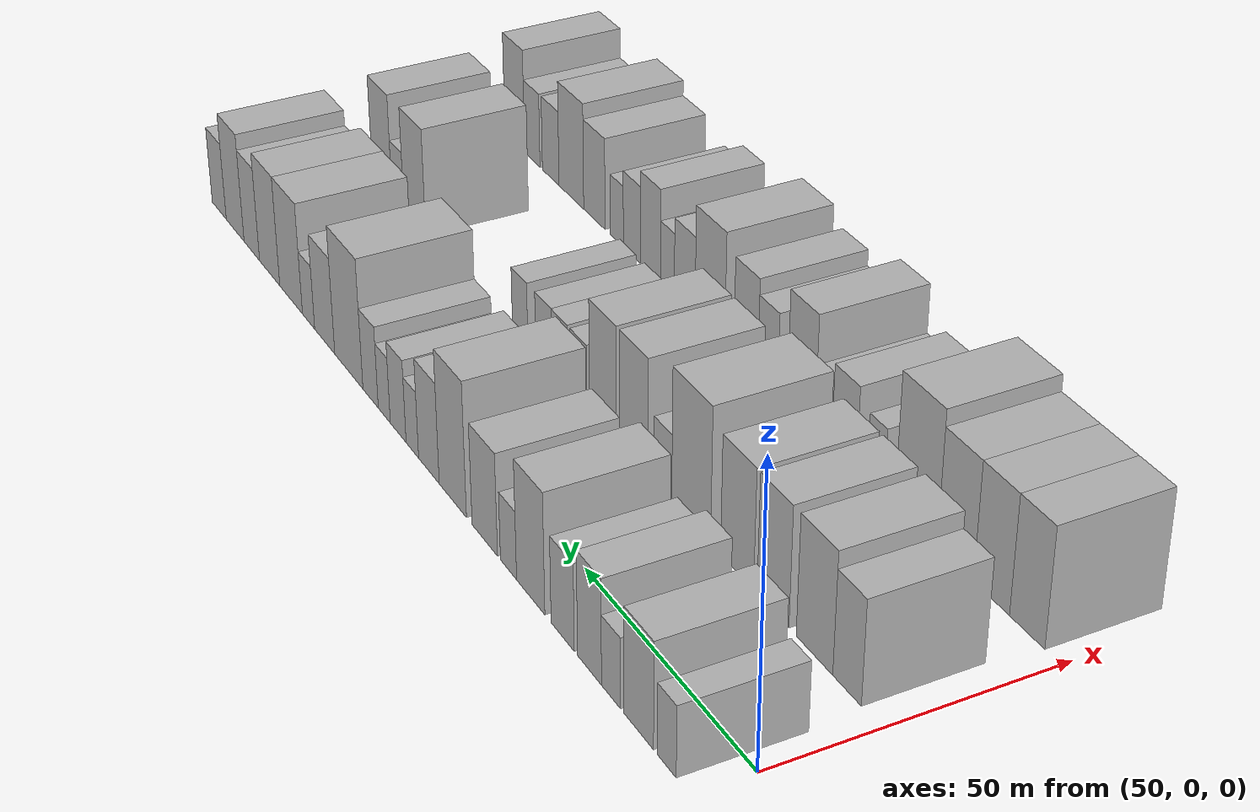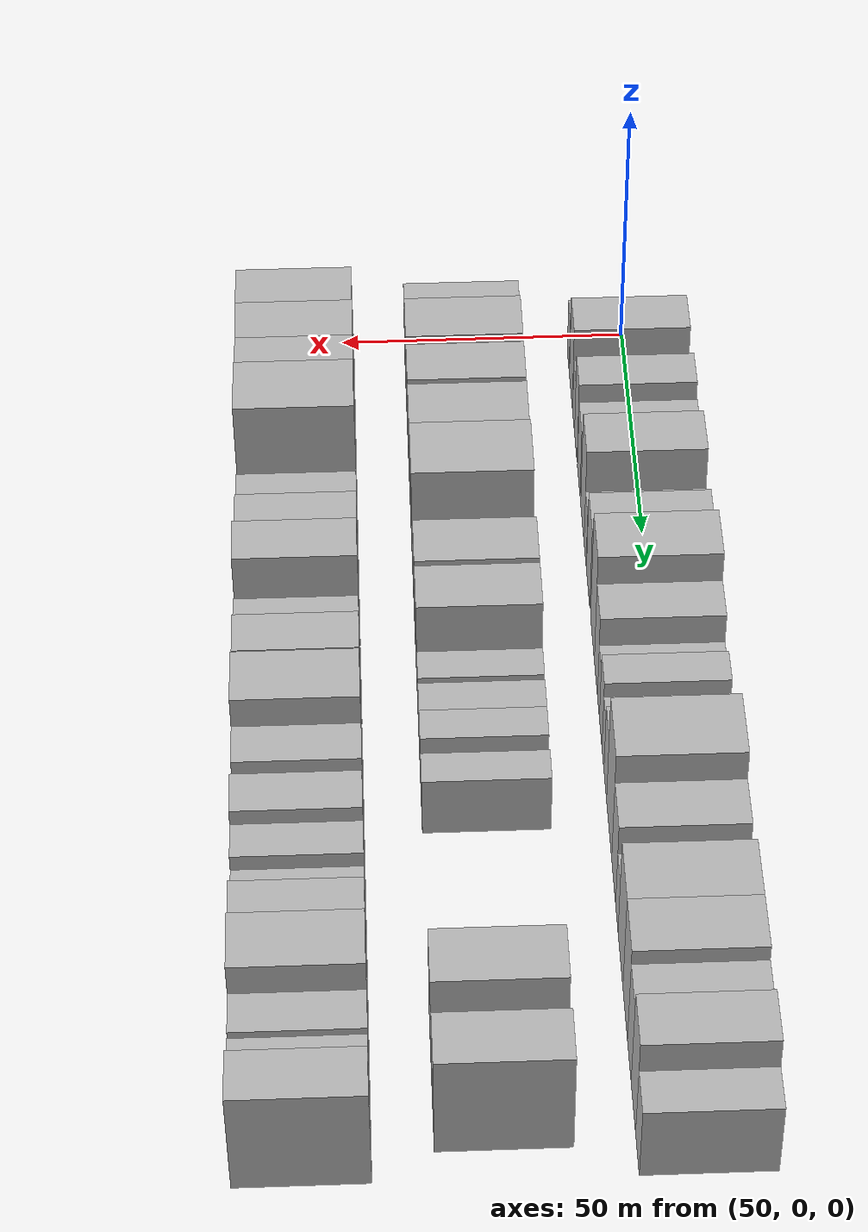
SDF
<sdf version="1.6">
 <world name="default">
  <model name="building_43">
   <static>1</static>
   <pose>50.0000 6.5225 0 0.000000 0.000000 0.000000</pose>
   <link name="link">
    <pose>0 0 6.00 0 0 0</pose>
    <collision name="collision"><geometry><box><size>20.0000 5.2908 12.0000</size></box></geometry></collision>
    <visual name="visual">
     <cast_shadows>0</cast_shadows>
     <geometry><box><size>20.0000 5.2908 12.0000</size></box></geometry>
     <material>
      <script>
       <uri>model://HANNAS_wall/materials/scripts</uri>
       <uri>model://HANNAS_wall/materials/textures</uri>
       <name>vrc/HANNAS_wall</name>
      </script>
     </material>
    </visual>
   </link>
  </model>
  <model name="building_44">
   <static>1</static>
   <pose>50.0000 14.3937 0 0.000000 0.000000 0.000000</pose>
   <link name="link">
    <pose>0 0 9.00 0 0 0</pose>
    <collision name="collision"><geometry><box><size>20.0000 8.4517 18.0000</size></box></geometry></collision>
    <visual name="visual">
     <cast_shadows>0</cast_shadows>
     <geometry><box><size>20.0000 8.4517 18.0000</size></box></geometry>
     <material>
      <script>
       <uri>model://HANNAS_wall/materials/scripts</uri>
       <uri>model://HANNAS_wall/materials/textures</uri>
       <name>vrc/HANNAS_wall</name>
      </script>
     </material>
    </visual>
   </link>
  </model>
  <model name="building_45">
   <static>1</static>
   <pose>50.0000 22.4386 0 0.000000 0.000000 0.000000</pose>
   <link name="link">
    <pose>0 0 6.00 0 0 0</pose>
    <collision name="collision"><geometry><box><size>20.0000 5.6380 12.0000</size></box></geometry></collision>
    <visual name="visual">
     <cast_shadows>0</cast_shadows>
     <geometry><box><size>20.0000 5.6380 12.0000</size></box></geometry>
     <material>
      <script>
       <uri>model://HANNAS_wall/materials/scripts</uri>
       <uri>model://HANNAS_wall/materials/textures</uri>
       <name>vrc/HANNAS_wall</name>
      </script>
     </material>
    </visual>
   </link>
  </model>
  <model name="building_46">
   <static>1</static>
   <pose>50.0000 28.9049 0 0.000000 0.000000 0.000000</pose>
   <link name="link">
    <pose>0 0 9.00 0 0 0</pose>
    <collision name="collision"><geometry><box><size>20.0000 7.2946 18.0000</size></box></geometry></collision>
    <visual name="visual">
     <cast_shadows>0</cast_shadows>
     <geometry><box><size>20.0000 7.2946 18.0000</size></box></geometry>
     <material>
      <script>
       <uri>model://HANNAS_wall/materials/scripts</uri>
       <uri>model://HANNAS_wall/materials/textures</uri>
       <name>vrc/HANNAS_wall</name>
      </script>
     </material>
    </visual>
   </link>
  </model>
  <model name="building_47">
   <static>1</static>
   <pose>50.0000 37.2040 0 0.000000 0.000000 0.000000</pose>
   <link name="link">
    <pose>0 0 7.50 0 0 0</pose>
    <collision name="collision"><geometry><box><size>20.0000 7.3038 15.0000</size></box></geometry></collision>
    <visual name="visual">
     <cast_shadows>0</cast_shadows>
     <geometry><box><size>20.0000 7.3038 15.0000</size></box></geometry>
     <material>
      <script>
       <uri>model://HANNAS_wall/materials/scripts</uri>
       <uri>model://HANNAS_wall/materials/textures</uri>
       <name>vrc/HANNAS_wall</name>
      </script>
     </material>
    </visual>
   </link>
  </model>
  <model name="building_48">
   <static>1</static>
   <pose>50.0000 47.4957 0 0.000000 0.000000 0.000000</pose>
   <link name="link">
    <pose>0 0 10.50 0 0 0</pose>
    <collision name="collision"><geometry><box><size>20.0000 9.2796 21.0000</size></box></geometry></collision>
    <visual name="visual">
     <cast_shadows>0</cast_shadows>
     <geometry><box><size>20.0000 9.2796 21.0000</size></box></geometry>
     <material>
      <script>
       <uri>model://HANNAS_wall/materials/scripts</uri>
       <uri>model://HANNAS_wall/materials/textures</uri>
       <name>vrc/HANNAS_wall</name>
      </script>
     </material>
    </visual>
   </link>
  </model>
  <model name="building_49">
   <static>1</static>
   <pose>50.0000 54.8565 0 0.000000 0.000000 0.000000</pose>
   <link name="link">
    <pose>0 0 6.00 0 0 0</pose>
    <collision name="collision"><geometry><box><size>20.0000 5.4418 12.0000</size></box></geometry></collision>
    <visual name="visual">
     <cast_shadows>0</cast_shadows>
     <geometry><box><size>20.0000 5.4418 12.0000</size></box></geometry>
     <material>
      <script>
       <uri>model://HANNAS_wall/materials/scripts</uri>
       <uri>model://HANNAS_wall/materials/textures</uri>
       <name>vrc/HANNAS_wall</name>
      </script>
     </material>
    </visual>
   </link>
  </model>
  <model name="building_50">
   <static>1</static>
   <pose>50.0000 63.0150 0 0.000000 0.000000 0.000000</pose>
   <link name="link">
    <pose>0 0 9.00 0 0 0</pose>
    <collision name="collision"><geometry><box><size>20.0000 8.8752 18.0000</size></box></geometry></collision>
    <visual name="visual">
     <cast_shadows>0</cast_shadows>
     <geometry><box><size>20.0000 8.8752 18.0000</size></box></geometry>
     <material>
      <script>
       <uri>model://HANNAS_wall/materials/scripts</uri>
       <uri>model://HANNAS_wall/materials/textures</uri>
       <name>vrc/HANNAS_wall</name>
      </script>
     </material>
    </visual>
   </link>
  </model>
  <model name="building_51">
   <static>1</static>
   <pose>50.0000 74.4169 0 0.000000 0.000000 0.000000</pose>
   <link name="link">
    <pose>0 0 12.00 0 0 0</pose>
    <collision name="collision"><geometry><box><size>20.0000 9.9286 24.0000</size></box></geometry></collision>
    <visual name="visual">
     <cast_shadows>0</cast_shadows>
     <geometry><box><size>20.0000 9.9286 24.0000</size></box></geometry>
     <material>
      <script>
       <uri>model://HANNAS_wall/materials/scripts</uri>
       <uri>model://HANNAS_wall/materials/textures</uri>
       <name>vrc/HANNAS_wall</name>
      </script>
     </material>
    </visual>
   </link>
  </model>
  <model name="building_52">
   <static>1</static>
   <pose>50.0000 83.2610 0 0.000000 0.000000 0.000000</pose>
   <link name="link">
    <pose>0 0 9.00 0 0 0</pose>
    <collision name="collision"><geometry><box><size>20.0000 7.7597 18.0000</size></box></geometry></collision>
    <visual name="visual">
     <cast_shadows>0</cast_shadows>
     <geometry><box><size>20.0000 7.7597 18.0000</size></box></geometry>
     <material>
      <script>
       <uri>model://HANNAS_wall/materials/scripts</uri>
       <uri>model://HANNAS_wall/materials/textures</uri>
       <name>vrc/HANNAS_wall</name>
      </script>
     </material>
    </visual>
   </link>
  </model>
  <model name="building_53">
   <static>1</static>
   <pose>50.0000 89.5563 0 0.000000 0.000000 0.000000</pose>
   <link name="link">
    <pose>0 0 6.00 0 0 0</pose>
    <collision name="collision"><geometry><box><size>20.0000 4.8309 12.0000</size></box></geometry></collision>
    <visual name="visual">
     <cast_shadows>0</cast_shadows>
     <geometry><box><size>20.0000 4.8309 12.0000</size></box></geometry>
     <material>
      <script>
       <uri>model://HANNAS_wall/materials/scripts</uri>
       <uri>model://HANNAS_wall/materials/textures</uri>
       <name>vrc/HANNAS_wall</name>
      </script>
     </material>
    </visual>
   </link>
  </model>
  <model name="building_54">
   <static>1</static>
   <pose>50.0000 95.0722 0 0.000000 0.000000 0.000000</pose>
   <link name="link">
    <pose>0 0 7.50 0 0 0</pose>
    <collision name="collision"><geometry><box><size>20.0000 6.2007 15.0000</size></box></geometry></collision>
    <visual name="visual">
     <cast_shadows>0</cast_shadows>
     <geometry><box><size>20.0000 6.2007 15.0000</size></box></geometry>
     <material>
      <script>
       <uri>model://HANNAS_wall/materials/scripts</uri>
       <uri>model://HANNAS_wall/materials/textures</uri>
       <name>vrc/HANNAS_wall</name>
      </script>
     </material>
    </visual>
   </link>
  </model>
  <model name="building_55">
   <static>1</static>
   <pose>50.0000 100.5840 0 0.000000 0.000000 0.000000</pose>
   <link name="link">
    <pose>0 0 6.00 0 0 0</pose>
    <collision name="collision"><geometry><box><size>20.0000 4.8229 12.0000</size></box></geometry></collision>
    <visual name="visual">
     <cast_shadows>0</cast_shadows>
     <geometry><box><size>20.0000 4.8229 12.0000</size></box></geometry>
     <material>
      <script>
       <uri>model://HANNAS_wall/materials/scripts</uri>
       <uri>model://HANNAS_wall/materials/textures</uri>
       <name>vrc/HANNAS_wall</name>
      </script>
     </material>
    </visual>
   </link>
  </model>
  <model name="building_56">
   <static>1</static>
   <pose>50.0000 106.1340 0 0.000000 0.000000 0.000000</pose>
   <link name="link">
    <pose>0 0 7.50 0 0 0</pose>
    <collision name="collision"><geometry><box><size>20.0000 6.2772 15.0000</size></box></geometry></collision>
    <visual name="visual">
     <cast_shadows>0</cast_shadows>
     <geometry><box><size>20.0000 6.2772 15.0000</size></box></geometry>
     <material>
      <script>
       <uri>model://HANNAS_wall/materials/scripts</uri>
       <uri>model://HANNAS_wall/materials/textures</uri>
       <name>vrc/HANNAS_wall</name>
      </script>
     </material>
    </visual>
   </link>
  </model>
  <model name="building_57">
   <static>1</static>
   <pose>50.0000 115.2247 0 0.000000 0.000000 0.000000</pose>
   <link name="link">
    <pose>0 0 12.00 0 0 0</pose>
    <collision name="collision"><geometry><box><size>20.0000 11.9042 24.0000</size></box></geometry></collision>
    <visual name="visual">
     <cast_shadows>0</cast_shadows>
     <geometry><box><size>20.0000 11.9042 24.0000</size></box></geometry>
     <material>
      <script>
       <uri>model://HANNAS_wall/materials/scripts</uri>
       <uri>model://HANNAS_wall/materials/textures</uri>
       <name>vrc/HANNAS_wall</name>
      </script>
     </material>
    </visual>
   </link>
  </model>
  <model name="building_58">
   <static>1</static>
   <pose>50.0000 125.5829 0 0.000000 0.000000 0.000000</pose>
   <link name="link">
    <pose>0 0 9.00 0 0 0</pose>
    <collision name="collision"><geometry><box><size>20.0000 8.8122 18.0000</size></box></geometry></collision>
    <visual name="visual">
     <cast_shadows>0</cast_shadows>
     <geometry><box><size>20.0000 8.8122 18.0000</size></box></geometry>
     <material>
      <script>
       <uri>model://HANNAS_wall/materials/scripts</uri>
       <uri>model://HANNAS_wall/materials/textures</uri>
       <name>vrc/HANNAS_wall</name>
      </script>
     </material>
    </visual>
   </link>
  </model>
  <model name="building_59">
   <static>1</static>
   <pose>50.0000 132.7276 0 0.000000 0.000000 0.000000</pose>
   <link name="link">
    <pose>0 0 6.00 0 0 0</pose>
    <collision name="collision"><geometry><box><size>20.0000 5.4770 12.0000</size></box></geometry></collision>
    <visual name="visual">
     <cast_shadows>0</cast_shadows>
     <geometry><box><size>20.0000 5.4770 12.0000</size></box></geometry>
     <material>
      <script>
       <uri>model://HANNAS_wall/materials/scripts</uri>
       <uri>model://HANNAS_wall/materials/textures</uri>
       <name>vrc/HANNAS_wall</name>
      </script>
     </material>
    </visual>
   </link>
  </model>
  <model name="building_60">
   <static>1</static>
   <pose>50.0000 140.7016 0 0.000000 0.000000 0.000000</pose>
   <link name="link">
    <pose>0 0 10.50 0 0 0</pose>
    <collision name="collision"><geometry><box><size>20.0000 10.4710 21.0000</size></box></geometry></collision>
    <visual name="visual">
     <cast_shadows>0</cast_shadows>
     <geometry><box><size>20.0000 10.4710 21.0000</size></box></geometry>
     <material>
      <script>
       <uri>model://HANNAS_wall/materials/scripts</uri>
       <uri>model://HANNAS_wall/materials/textures</uri>
       <name>vrc/HANNAS_wall</name>
      </script>
     </material>
    </visual>
   </link>
  </model>
  <model name="building_61">
   <static>1</static>
   <pose>50.0000 150.7479 0 0.000000 0.000000 0.000000</pose>
   <link name="link">
    <pose>0 0 10.50 0 0 0</pose>
    <collision name="collision"><geometry><box><size>20.0000 9.6218 21.0000</size></box></geometry></collision>
    <visual name="visual">
     <cast_shadows>0</cast_shadows>
     <geometry><box><size>20.0000 9.6218 21.0000</size></box></geometry>
     <material>
      <script>
       <uri>model://HANNAS_wall/materials/scripts</uri>
       <uri>model://HANNAS_wall/materials/textures</uri>
       <name>vrc/HANNAS_wall</name>
      </script>
     </material>
    </visual>
   </link>
  </model>
  <model name="building_62">
   <static>1</static>
   <pose>50.0000 159.3669 0 0.000000 0.000000 0.000000</pose>
   <link name="link">
    <pose>0 0 9.00 0 0 0</pose>
    <collision name="collision"><geometry><box><size>20.0000 7.6161 18.0000</size></box></geometry></collision>
    <visual name="visual">
     <cast_shadows>0</cast_shadows>
     <geometry><box><size>20.0000 7.6161 18.0000</size></box></geometry>
     <material>
      <script>
       <uri>model://HANNAS_wall/materials/scripts</uri>
       <uri>model://HANNAS_wall/materials/textures</uri>
       <name>vrc/HANNAS_wall</name>
      </script>
     </material>
    </visual>
   </link>
  </model>
  <model name="building_63">
   <static>1</static>
   <pose>50.0000 167.6604 0 0.000000 0.000000 0.000000</pose>
   <link name="link">
    <pose>0 0 10.50 0 0 0</pose>
    <collision name="collision"><geometry><box><size>20.0000 8.9709 21.0000</size></box></geometry></collision>
    <visual name="visual">
     <cast_shadows>0</cast_shadows>
     <geometry><box><size>20.0000 8.9709 21.0000</size></box></geometry>
     <material>
      <script>
       <uri>model://HANNAS_wall/materials/scripts</uri>
       <uri>model://HANNAS_wall/materials/textures</uri>
       <name>vrc/HANNAS_wall</name>
      </script>
     </material>
    </visual>
   </link>
  </model>
  <model name="building_64">
   <static>1</static>
   <pose>50.0000 175.7544 0 0.000000 0.000000 0.000000</pose>
   <link name="link">
    <pose>0 0 7.50 0 0 0</pose>
    <collision name="collision"><geometry><box><size>20.0000 7.2171 15.0000</size></box></geometry></collision>
    <visual name="visual">
     <cast_shadows>0</cast_shadows>
     <geometry><box><size>20.0000 7.2171 15.0000</size></box></geometry>
     <material>
      <script>
       <uri>model://HANNAS_wall/materials/scripts</uri>
       <uri>model://HANNAS_wall/materials/textures</uri>
       <name>vrc/HANNAS_wall</name>
      </script>
     </material>
    </visual>
   </link>
  </model>
  <model name="building_120">
   <static>1</static>
   <pose>79.0000 8.8553 0 0.000000 0.000000 0.000000</pose>
   <link name="link">
    <pose>0 0 9.00 0 0 0</pose>
    <collision name="collision"><geometry><box><size>20.0000 7.4284 18.0000</size></box></geometry></collision>
    <visual name="visual">
     <cast_shadows>0</cast_shadows>
     <geometry><box><size>20.0000 7.4284 18.0000</size></box></geometry>
     <material>
      <script>
       <uri>model://HANNAS_wall/materials/scripts</uri>
       <uri>model://HANNAS_wall/materials/textures</uri>
       <name>vrc/HANNAS_wall</name>
      </script>
     </material>
    </visual>
   </link>
  </model>
  <model name="building_121">
   <static>1</static>
   <pose>79.0000 17.4801 0 0.000000 0.000000 0.000000</pose>
   <link name="link">
    <pose>0 0 10.50 0 0 0</pose>
    <collision name="collision"><geometry><box><size>20.0000 9.8212 21.0000</size></box></geometry></collision>
    <visual name="visual">
     <cast_shadows>0</cast_shadows>
     <geometry><box><size>20.0000 9.8212 21.0000</size></box></geometry>
     <material>
      <script>
       <uri>model://HANNAS_wall/materials/scripts</uri>
       <uri>model://HANNAS_wall/materials/textures</uri>
       <name>vrc/HANNAS_wall</name>
      </script>
     </material>
    </visual>
   </link>
  </model>
  <model name="building_122">
   <static>1</static>
   <pose>79.0000 28.8770 0 0.000000 0.000000 0.000000</pose>
   <link name="link">
    <pose>0 0 10.50 0 0 0</pose>
    <collision name="collision"><geometry><box><size>20.0000 8.9725 21.0000</size></box></geometry></collision>
    <visual name="visual">
     <cast_shadows>0</cast_shadows>
     <geometry><box><size>20.0000 8.9725 21.0000</size></box></geometry>
     <material>
      <script>
       <uri>model://HANNAS_wall/materials/scripts</uri>
       <uri>model://HANNAS_wall/materials/textures</uri>
       <name>vrc/HANNAS_wall</name>
      </script>
     </material>
    </visual>
   </link>
  </model>
  <model name="building_123">
   <static>1</static>
   <pose>79.0000 39.2070 0 0.000000 0.000000 0.000000</pose>
   <link name="link">
    <pose>0 0 10.50 0 0 0</pose>
    <collision name="collision"><geometry><box><size>20.0000 9.6876 21.0000</size></box></geometry></collision>
    <visual name="visual">
     <cast_shadows>0</cast_shadows>
     <geometry><box><size>20.0000 9.6876 21.0000</size></box></geometry>
     <material>
      <script>
       <uri>model://HANNAS_wall/materials/scripts</uri>
       <uri>model://HANNAS_wall/materials/textures</uri>
       <name>vrc/HANNAS_wall</name>
      </script>
     </material>
    </visual>
   </link>
  </model>
  <model name="building_124">
   <static>1</static>
   <pose>79.0000 53.0484 0 0.000000 0.000000 0.000000</pose>
   <link name="link">
    <pose>0 0 12.00 0 0 0</pose>
    <collision name="collision"><geometry><box><size>20.0000 11.9952 24.0000</size></box></geometry></collision>
    <visual name="visual">
     <cast_shadows>0</cast_shadows>
     <geometry><box><size>20.0000 11.9952 24.0000</size></box></geometry>
     <material>
      <script>
       <uri>model://HANNAS_wall/materials/scripts</uri>
       <uri>model://HANNAS_wall/materials/textures</uri>
       <name>vrc/HANNAS_wall</name>
      </script>
     </material>
    </visual>
   </link>
  </model>
  <model name="building_125">
   <static>1</static>
   <pose>79.0000 61.8957 0 0.000000 0.000000 0.000000</pose>
   <link name="link">
    <pose>0 0 6.00 0 0 0</pose>
    <collision name="collision"><geometry><box><size>20.0000 5.6995 12.0000</size></box></geometry></collision>
    <visual name="visual">
     <cast_shadows>0</cast_shadows>
     <geometry><box><size>20.0000 5.6995 12.0000</size></box></geometry>
     <material>
      <script>
       <uri>model://HANNAS_wall/materials/scripts</uri>
       <uri>model://HANNAS_wall/materials/textures</uri>
       <name>vrc/HANNAS_wall</name>
      </script>
     </material>
    </visual>
   </link>
  </model>
  <model name="building_126">
   <static>1</static>
   <pose>79.0000 71.4374 0 0.000000 0.000000 0.000000</pose>
   <link name="link">
    <pose>0 0 10.50 0 0 0</pose>
    <collision name="collision"><geometry><box><size>20.0000 9.3837 21.0000</size></box></geometry></collision>
    <visual name="visual">
     <cast_shadows>0</cast_shadows>
     <geometry><box><size>20.0000 9.3837 21.0000</size></box></geometry>
     <material>
      <script>
       <uri>model://HANNAS_wall/materials/scripts</uri>
       <uri>model://HANNAS_wall/materials/textures</uri>
       <name>vrc/HANNAS_wall</name>
      </script>
     </material>
    </visual>
   </link>
  </model>
  <model name="building_127">
   <static>1</static>
   <pose>79.0000 81.7316 0 0.000000 0.000000 0.000000</pose>
   <link name="link">
    <pose>0 0 10.50 0 0 0</pose>
    <collision name="collision"><geometry><box><size>20.0000 9.2048 21.0000</size></box></geometry></collision>
    <visual name="visual">
     <cast_shadows>0</cast_shadows>
     <geometry><box><size>20.0000 9.2048 21.0000</size></box></geometry>
     <material>
      <script>
       <uri>model://HANNAS_wall/materials/scripts</uri>
       <uri>model://HANNAS_wall/materials/textures</uri>
       <name>vrc/HANNAS_wall</name>
      </script>
     </material>
    </visual>
   </link>
  </model>
  <model name="building_128">
   <static>1</static>
   <pose>79.0000 90.2202 0 0.000000 0.000000 0.000000</pose>
   <link name="link">
    <pose>0 0 6.00 0 0 0</pose>
    <collision name="collision"><geometry><box><size>20.0000 5.7724 12.0000</size></box></geometry></collision>
    <visual name="visual">
     <cast_shadows>0</cast_shadows>
     <geometry><box><size>20.0000 5.7724 12.0000</size></box></geometry>
     <material>
      <script>
       <uri>model://HANNAS_wall/materials/scripts</uri>
       <uri>model://HANNAS_wall/materials/textures</uri>
       <name>vrc/HANNAS_wall</name>
      </script>
     </material>
    </visual>
   </link>
  </model>
  <model name="building_129">
   <static>1</static>
   <pose>79.0000 96.9777 0 0.000000 0.000000 0.000000</pose>
   <link name="link">
    <pose>0 0 6.00 0 0 0</pose>
    <collision name="collision"><geometry><box><size>20.0000 5.7426 12.0000</size></box></geometry></collision>
    <visual name="visual">
     <cast_shadows>0</cast_shadows>
     <geometry><box><size>20.0000 5.7426 12.0000</size></box></geometry>
     <material>
      <script>
       <uri>model://HANNAS_wall/materials/scripts</uri>
       <uri>model://HANNAS_wall/materials/textures</uri>
       <name>vrc/HANNAS_wall</name>
      </script>
     </material>
    </visual>
   </link>
  </model>
  <model name="building_130">
   <static>1</static>
   <pose>79.0000 102.8327 0 0.000000 0.000000 0.000000</pose>
   <link name="link">
    <pose>0 0 6.00 0 0 0</pose>
    <collision name="collision"><geometry><box><size>20.0000 5.9674 12.0000</size></box></geometry></collision>
    <visual name="visual">
     <cast_shadows>0</cast_shadows>
     <geometry><box><size>20.0000 5.9674 12.0000</size></box></geometry>
     <material>
      <script>
       <uri>model://HANNAS_wall/materials/scripts</uri>
       <uri>model://HANNAS_wall/materials/textures</uri>
       <name>vrc/HANNAS_wall</name>
      </script>
     </material>
    </visual>
   </link>
  </model>
  <model name="building_131">
   <static>1</static>
   <pose>79.0000 111.7465 0 0.000000 0.000000 0.000000</pose>
   <link name="link">
    <pose>0 0 6.00 0 0 0</pose>
    <collision name="collision"><geometry><box><size>20.0000 5.8604 12.0000</size></box></geometry></collision>
    <visual name="visual">
     <cast_shadows>0</cast_shadows>
     <geometry><box><size>20.0000 5.8604 12.0000</size></box></geometry>
     <material>
      <script>
       <uri>model://HANNAS_wall/materials/scripts</uri>
       <uri>model://HANNAS_wall/materials/textures</uri>
       <name>vrc/HANNAS_wall</name>
      </script>
     </material>
    </visual>
   </link>
  </model>
  <model name="building_132">
   <static>1</static>
   <pose>79.0000 155.0806 0 0.000000 0.000000 0.000000</pose>
   <link name="link">
    <pose>0 0 10.50 0 0 0</pose>
    <collision name="collision"><geometry><box><size>20.0000 9.6026 21.0000</size></box></geometry></collision>
    <visual name="visual">
     <cast_shadows>0</cast_shadows>
     <geometry><box><size>20.0000 9.6026 21.0000</size></box></geometry>
     <material>
      <script>
       <uri>model://HANNAS_wall/materials/scripts</uri>
       <uri>model://HANNAS_wall/materials/textures</uri>
       <name>vrc/HANNAS_wall</name>
      </script>
     </material>
    </visual>
   </link>
  </model>
  <model name="building_133">
   <static>1</static>
   <pose>79.0000 162.5545 0 0.000000 0.000000 0.000000</pose>
   <link name="link">
    <pose>0 0 6.00 0 0 0</pose>
    <collision name="collision"><geometry><box><size>20.0000 5.3453 12.0000</size></box></geometry></collision>
    <visual name="visual">
     <cast_shadows>0</cast_shadows>
     <geometry><box><size>20.0000 5.3453 12.0000</size></box></geometry>
     <material>
      <script>
       <uri>model://HANNAS_wall/materials/scripts</uri>
       <uri>model://HANNAS_wall/materials/textures</uri>
       <name>vrc/HANNAS_wall</name>
      </script>
     </material>
    </visual>
   </link>
  </model>
  <model name="building_134">
   <static>1</static>
   <pose>79.0000 169.7004 0 0.000000 0.000000 0.000000</pose>
   <link name="link">
    <pose>0 0 10.50 0 0 0</pose>
    <collision name="collision"><geometry><box><size>20.0000 8.9465 21.0000</size></box></geometry></collision>
    <visual name="visual">
     <cast_shadows>0</cast_shadows>
     <geometry><box><size>20.0000 8.9465 21.0000</size></box></geometry>
     <material>
      <script>
       <uri>model://HANNAS_wall/materials/scripts</uri>
       <uri>model://HANNAS_wall/materials/textures</uri>
       <name>vrc/HANNAS_wall</name>
      </script>
     </material>
    </visual>
   </link>
  </model>
  <model name="building_194">
   <static>1</static>
   <pose>108.0000 8.1631 0 0.000000 0.000000 0.000000</pose>
   <link name="link">
    <pose>0 0 10.50 0 0 0</pose>
    <collision name="collision"><geometry><box><size>20.0000 8.6166 21.0000</size></box></geometry></collision>
    <visual name="visual">
     <cast_shadows>0</cast_shadows>
     <geometry><box><size>20.0000 8.6166 21.0000</size></box></geometry>
     <material>
      <script>
       <uri>model://HANNAS_wall/materials/scripts</uri>
       <uri>model://HANNAS_wall/materials/textures</uri>
       <name>vrc/HANNAS_wall</name>
      </script>
     </material>
    </visual>
   </link>
  </model>
  <model name="building_195">
   <static>1</static>
   <pose>108.0000 17.0072 0 0.000000 0.000000 0.000000</pose>
   <link name="link">
    <pose>0 0 10.50 0 0 0</pose>
    <collision name="collision"><geometry><box><size>20.0000 9.0716 21.0000</size></box></geometry></collision>
    <visual name="visual">
     <cast_shadows>0</cast_shadows>
     <geometry><box><size>20.0000 9.0716 21.0000</size></box></geometry>
     <material>
      <script>
       <uri>model://HANNAS_wall/materials/scripts</uri>
       <uri>model://HANNAS_wall/materials/textures</uri>
       <name>vrc/HANNAS_wall</name>
      </script>
     </material>
    </visual>
   </link>
  </model>
  <model name="building_196">
   <static>1</static>
   <pose>108.0000 26.3056 0 0.000000 0.000000 0.000000</pose>
   <link name="link">
    <pose>0 0 10.50 0 0 0</pose>
    <collision name="collision"><geometry><box><size>20.0000 9.5251 21.0000</size></box></geometry></collision>
    <visual name="visual">
     <cast_shadows>0</cast_shadows>
     <geometry><box><size>20.0000 9.5251 21.0000</size></box></geometry>
     <material>
      <script>
       <uri>model://HANNAS_wall/materials/scripts</uri>
       <uri>model://HANNAS_wall/materials/textures</uri>
       <name>vrc/HANNAS_wall</name>
      </script>
     </material>
    </visual>
   </link>
  </model>
  <model name="building_197">
   <static>1</static>
   <pose>108.0000 36.8399 0 0.000000 0.000000 0.000000</pose>
   <link name="link">
    <pose>0 0 12.00 0 0 0</pose>
    <collision name="collision"><geometry><box><size>20.0000 11.5436 24.0000</size></box></geometry></collision>
    <visual name="visual">
     <cast_shadows>0</cast_shadows>
     <geometry><box><size>20.0000 11.5436 24.0000</size></box></geometry>
     <material>
      <script>
       <uri>model://HANNAS_wall/materials/scripts</uri>
       <uri>model://HANNAS_wall/materials/textures</uri>
       <name>vrc/HANNAS_wall</name>
      </script>
     </material>
    </visual>
   </link>
  </model>
  <model name="building_198">
   <static>1</static>
   <pose>108.0000 48.0638 0 0.000000 0.000000 0.000000</pose>
   <link name="link">
    <pose>0 0 6.00 0 0 0</pose>
    <collision name="collision"><geometry><box><size>20.0000 4.9042 12.0000</size></box></geometry></collision>
    <visual name="visual">
     <cast_shadows>0</cast_shadows>
     <geometry><box><size>20.0000 4.9042 12.0000</size></box></geometry>
     <material>
      <script>
       <uri>model://HANNAS_wall/materials/scripts</uri>
       <uri>model://HANNAS_wall/materials/textures</uri>
       <name>vrc/HANNAS_wall</name>
      </script>
     </material>
    </visual>
   </link>
  </model>
  <model name="building_199">
   <static>1</static>
   <pose>108.0000 57.1660 0 0.000000 0.000000 0.000000</pose>
   <link name="link">
    <pose>0 0 7.50 0 0 0</pose>
    <collision name="collision"><geometry><box><size>20.0000 7.3002 15.0000</size></box></geometry></collision>
    <visual name="visual">
     <cast_shadows>0</cast_shadows>
     <geometry><box><size>20.0000 7.3002 15.0000</size></box></geometry>
     <material>
      <script>
       <uri>model://HANNAS_wall/materials/scripts</uri>
       <uri>model://HANNAS_wall/materials/textures</uri>
       <name>vrc/HANNAS_wall</name>
      </script>
     </material>
    </visual>
   </link>
  </model>
  <model name="building_200">
   <static>1</static>
   <pose>108.0000 63.3331 0 0.000000 0.000000 0.000000</pose>
   <link name="link">
    <pose>0 0 6.00 0 0 0</pose>
    <collision name="collision"><geometry><box><size>20.0000 5.0340 12.0000</size></box></geometry></collision>
    <visual name="visual">
     <cast_shadows>0</cast_shadows>
     <geometry><box><size>20.0000 5.0340 12.0000</size></box></geometry>
     <material>
      <script>
       <uri>model://HANNAS_wall/materials/scripts</uri>
       <uri>model://HANNAS_wall/materials/textures</uri>
       <name>vrc/HANNAS_wall</name>
      </script>
     </material>
    </visual>
   </link>
  </model>
  <model name="building_201">
   <static>1</static>
   <pose>108.0000 70.1369 0 0.000000 0.000000 0.000000</pose>
   <link name="link">
    <pose>0 0 10.50 0 0 0</pose>
    <collision name="collision"><geometry><box><size>20.0000 8.5736 21.0000</size></box></geometry></collision>
    <visual name="visual">
     <cast_shadows>0</cast_shadows>
     <geometry><box><size>20.0000 8.5736 21.0000</size></box></geometry>
     <material>
      <script>
       <uri>model://HANNAS_wall/materials/scripts</uri>
       <uri>model://HANNAS_wall/materials/textures</uri>
       <name>vrc/HANNAS_wall</name>
      </script>
     </material>
    </visual>
   </link>
  </model>
  <model name="building_202">
   <static>1</static>
   <pose>108.0000 80.6072 0 0.000000 0.000000 0.000000</pose>
   <link name="link">
    <pose>0 0 7.50 0 0 0</pose>
    <collision name="collision"><geometry><box><size>20.0000 6.3669 15.0000</size></box></geometry></collision>
    <visual name="visual">
     <cast_shadows>0</cast_shadows>
     <geometry><box><size>20.0000 6.3669 15.0000</size></box></geometry>
     <material>
      <script>
       <uri>model://HANNAS_wall/materials/scripts</uri>
       <uri>model://HANNAS_wall/materials/textures</uri>
       <name>vrc/HANNAS_wall</name>
      </script>
     </material>
    </visual>
   </link>
  </model>
  <model name="building_203">
   <static>1</static>
   <pose>108.0000 87.7115 0 0.000000 0.000000 0.000000</pose>
   <link name="link">
    <pose>0 0 9.00 0 0 0</pose>
    <collision name="collision"><geometry><box><size>20.0000 7.8417 18.0000</size></box></geometry></collision>
    <visual name="visual">
     <cast_shadows>0</cast_shadows>
     <geometry><box><size>20.0000 7.8417 18.0000</size></box></geometry>
     <material>
      <script>
       <uri>model://HANNAS_wall/materials/scripts</uri>
       <uri>model://HANNAS_wall/materials/textures</uri>
       <name>vrc/HANNAS_wall</name>
      </script>
     </material>
    </visual>
   </link>
  </model>
  <model name="building_204">
   <static>1</static>
   <pose>108.0000 99.7124 0 0.000000 0.000000 0.000000</pose>
   <link name="link">
    <pose>0 0 10.50 0 0 0</pose>
    <collision name="collision"><geometry><box><size>20.0000 10.1603 21.0000</size></box></geometry></collision>
    <visual name="visual">
     <cast_shadows>0</cast_shadows>
     <geometry><box><size>20.0000 10.1603 21.0000</size></box></geometry>
     <material>
      <script>
       <uri>model://HANNAS_wall/materials/scripts</uri>
       <uri>model://HANNAS_wall/materials/textures</uri>
       <name>vrc/HANNAS_wall</name>
      </script>
     </material>
    </visual>
   </link>
  </model>
  <model name="building_205">
   <static>1</static>
   <pose>108.0000 108.4473 0 0.000000 0.000000 0.000000</pose>
   <link name="link">
    <pose>0 0 7.50 0 0 0</pose>
    <collision name="collision"><geometry><box><size>20.0000 7.3095 15.0000</size></box></geometry></collision>
    <visual name="visual">
     <cast_shadows>0</cast_shadows>
     <geometry><box><size>20.0000 7.3095 15.0000</size></box></geometry>
     <material>
      <script>
       <uri>model://HANNAS_wall/materials/scripts</uri>
       <uri>model://HANNAS_wall/materials/textures</uri>
       <name>vrc/HANNAS_wall</name>
      </script>
     </material>
    </visual>
   </link>
  </model>
  <model name="building_206">
   <static>1</static>
   <pose>108.0000 114.5929 0 0.000000 0.000000 0.000000</pose>
   <link name="link">
    <pose>0 0 6.00 0 0 0</pose>
    <collision name="collision"><geometry><box><size>20.0000 4.9817 12.0000</size></box></geometry></collision>
    <visual name="visual">
     <cast_shadows>0</cast_shadows>
     <geometry><box><size>20.0000 4.9817 12.0000</size></box></geometry>
     <material>
      <script>
       <uri>model://HANNAS_wall/materials/scripts</uri>
       <uri>model://HANNAS_wall/materials/textures</uri>
       <name>vrc/HANNAS_wall</name>
      </script>
     </material>
    </visual>
   </link>
  </model>
  <model name="building_207">
   <static>1</static>
   <pose>108.0000 120.7800 0 0.000000 0.000000 0.000000</pose>
   <link name="link">
    <pose>0 0 9.00 0 0 0</pose>
    <collision name="collision"><geometry><box><size>20.0000 7.3925 18.0000</size></box></geometry></collision>
    <visual name="visual">
     <cast_shadows>0</cast_shadows>
     <geometry><box><size>20.0000 7.3925 18.0000</size></box></geometry>
     <material>
      <script>
       <uri>model://HANNAS_wall/materials/scripts</uri>
       <uri>model://HANNAS_wall/materials/textures</uri>
       <name>vrc/HANNAS_wall</name>
      </script>
     </material>
    </visual>
   </link>
  </model>
  <model name="building_208">
   <static>1</static>
   <pose>108.0000 127.6495 0 0.000000 0.000000 0.000000</pose>
   <link name="link">
    <pose>0 0 7.50 0 0 0</pose>
    <collision name="collision"><geometry><box><size>20.0000 6.3465 15.0000</size></box></geometry></collision>
    <visual name="visual">
     <cast_shadows>0</cast_shadows>
     <geometry><box><size>20.0000 6.3465 15.0000</size></box></geometry>
     <material>
      <script>
       <uri>model://HANNAS_wall/materials/scripts</uri>
       <uri>model://HANNAS_wall/materials/textures</uri>
       <name>vrc/HANNAS_wall</name>
      </script>
     </material>
    </visual>
   </link>
  </model>
  <model name="building_209">
   <static>1</static>
   <pose>108.0000 133.3250 0 0.000000 0.000000 0.000000</pose>
   <link name="link">
    <pose>0 0 6.00 0 0 0</pose>
    <collision name="collision"><geometry><box><size>20.0000 5.0046 12.0000</size></box></geometry></collision>
    <visual name="visual">
     <cast_shadows>0</cast_shadows>
     <geometry><box><size>20.0000 5.0046 12.0000</size></box></geometry>
     <material>
      <script>
       <uri>model://HANNAS_wall/materials/scripts</uri>
       <uri>model://HANNAS_wall/materials/textures</uri>
       <name>vrc/HANNAS_wall</name>
      </script>
     </material>
    </visual>
   </link>
  </model>
  <model name="building_210">
   <static>1</static>
   <pose>108.0000 142.0184 0 0.000000 0.000000 0.000000</pose>
   <link name="link">
    <pose>0 0 9.00 0 0 0</pose>
    <collision name="collision"><geometry><box><size>20.0000 8.3822 18.0000</size></box></geometry></collision>
    <visual name="visual">
     <cast_shadows>0</cast_shadows>
     <geometry><box><size>20.0000 8.3822 18.0000</size></box></geometry>
     <material>
      <script>
       <uri>model://HANNAS_wall/materials/scripts</uri>
       <uri>model://HANNAS_wall/materials/textures</uri>
       <name>vrc/HANNAS_wall</name>
      </script>
     </material>
    </visual>
   </link>
  </model>
  <model name="building_211">
   <static>1</static>
   <pose>108.0000 151.2035 0 0.000000 0.000000 0.000000</pose>
   <link name="link">
    <pose>0 0 10.50 0 0 0</pose>
    <collision name="collision"><geometry><box><size>20.0000 9.9881 21.0000</size></box></geometry></collision>
    <visual name="visual">
     <cast_shadows>0</cast_shadows>
     <geometry><box><size>20.0000 9.9881 21.0000</size></box></geometry>
     <material>
      <script>
       <uri>model://HANNAS_wall/materials/scripts</uri>
       <uri>model://HANNAS_wall/materials/textures</uri>
       <name>vrc/HANNAS_wall</name>
      </script>
     </material>
    </visual>
   </link>
  </model>
  <model name="building_212">
   <static>1</static>
   <pose>108.0000 159.6548 0 0.000000 0.000000 0.000000</pose>
   <link name="link">
    <pose>0 0 7.50 0 0 0</pose>
    <collision name="collision"><geometry><box><size>20.0000 6.9146 15.0000</size></box></geometry></collision>
    <visual name="visual">
     <cast_shadows>0</cast_shadows>
     <geometry><box><size>20.0000 6.9146 15.0000</size></box></geometry>
     <material>
      <script>
       <uri>model://HANNAS_wall/materials/scripts</uri>
       <uri>model://HANNAS_wall/materials/textures</uri>
       <name>vrc/HANNAS_wall</name>
      </script>
     </material>
    </visual>
   </link>
  </model>
  <model name="building_213">
   <static>1</static>
   <pose>108.0000 167.3867 0 0.000000 0.000000 0.000000</pose>
   <link name="link">
    <pose>0 0 7.50 0 0 0</pose>
    <collision name="collision"><geometry><box><size>20.0000 6.5492 15.0000</size></box></geometry></collision>
    <visual name="visual">
     <cast_shadows>0</cast_shadows>
     <geometry><box><size>20.0000 6.5492 15.0000</size></box></geometry>
     <material>
      <script>
       <uri>model://HANNAS_wall/materials/scripts</uri>
       <uri>model://HANNAS_wall/materials/textures</uri>
       <name>vrc/HANNAS_wall</name>
      </script>
     </material>
    </visual>
   </link>
  </model>
  <model name="building_214">
   <static>1</static>
   <pose>108.0000 174.9183 0 0.000000 0.000000 0.000000</pose>
   <link name="link">
    <pose>0 0 10.50 0 0 0</pose>
    <collision name="collision"><geometry><box><size>20.0000 8.5140 21.0000</size></box></geometry></collision>
    <visual name="visual">
     <cast_shadows>0</cast_shadows>
     <geometry><box><size>20.0000 8.5140 21.0000</size></box></geometry>
     <material>
      <script>
       <uri>model://HANNAS_wall/materials/scripts</uri>
       <uri>model://HANNAS_wall/materials/textures</uri>
       <name>vrc/HANNAS_wall</name>
      </script>
     </material>
    </visual>
   </link>
  </model>
 </world>
</sdf>
